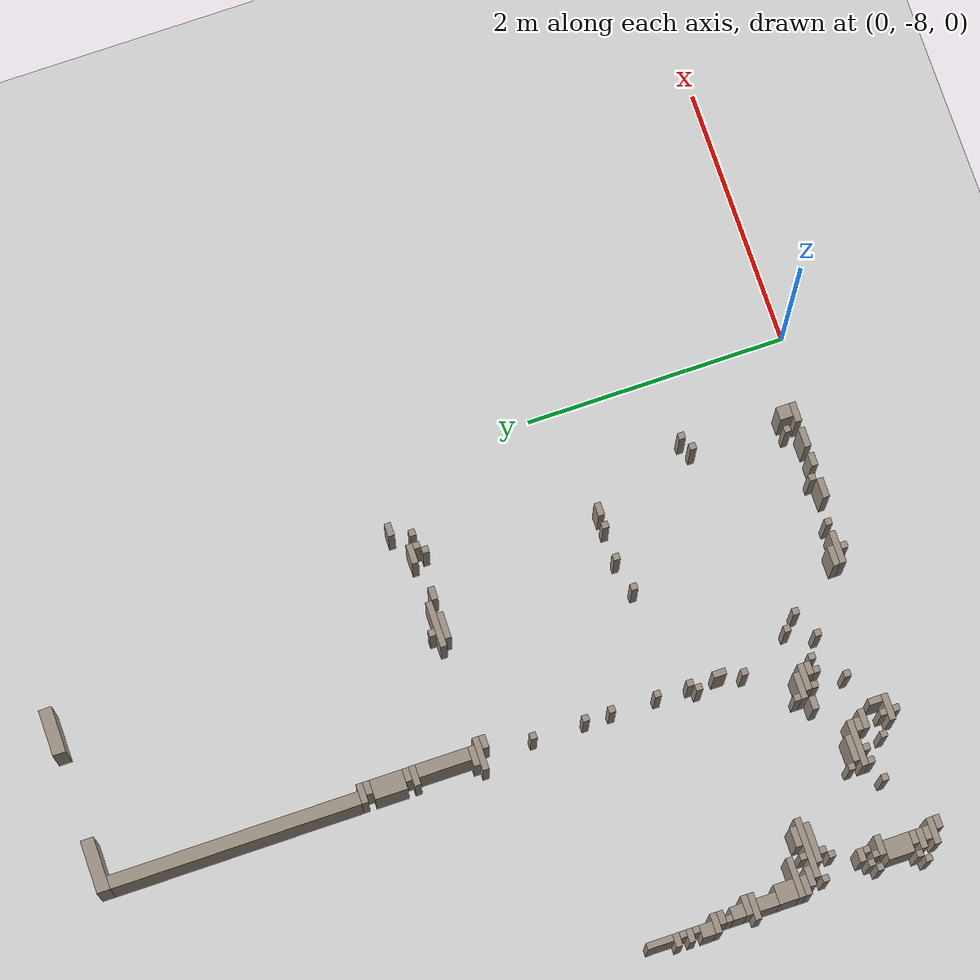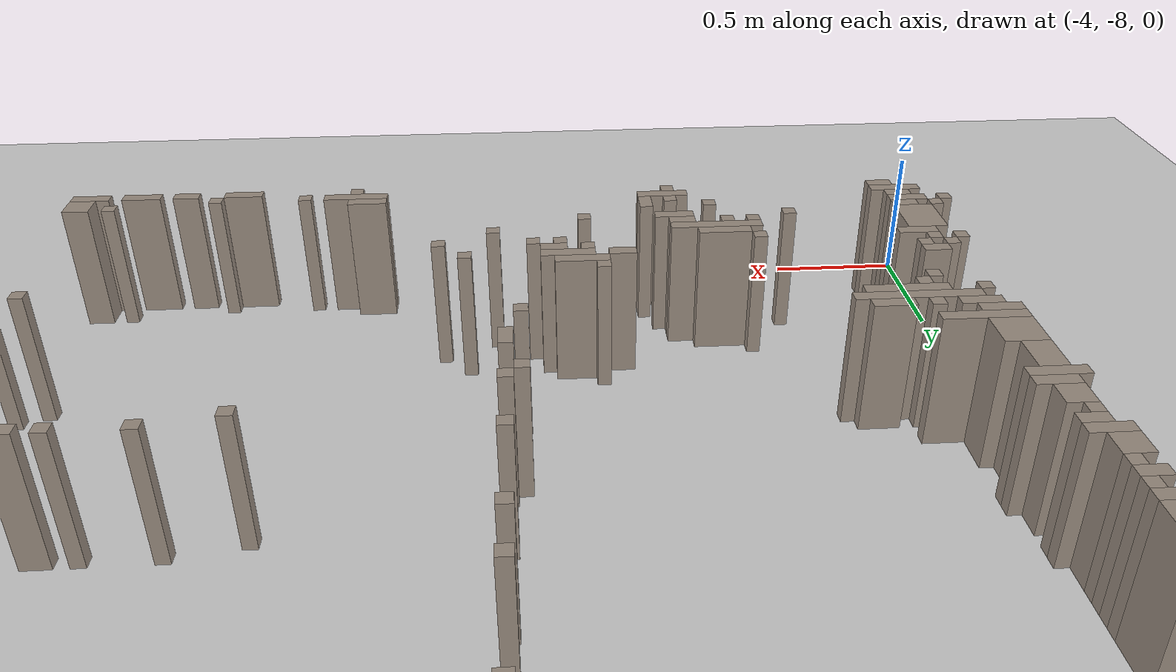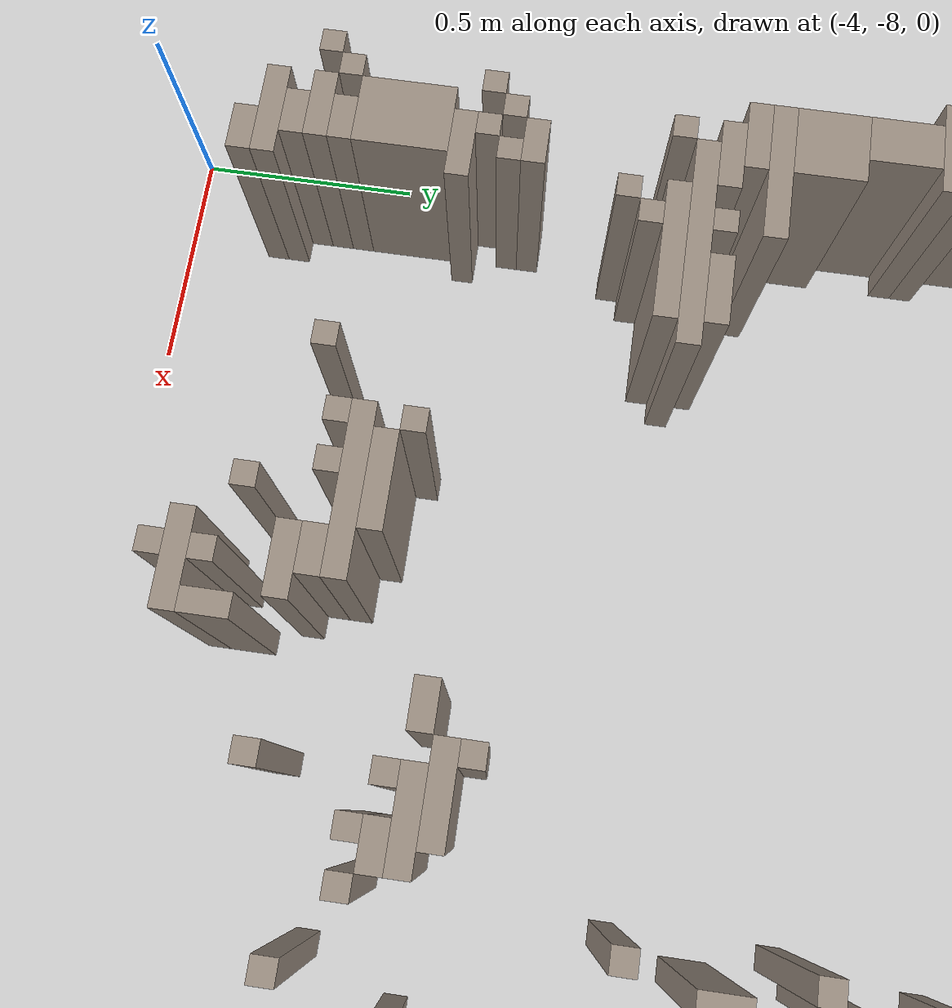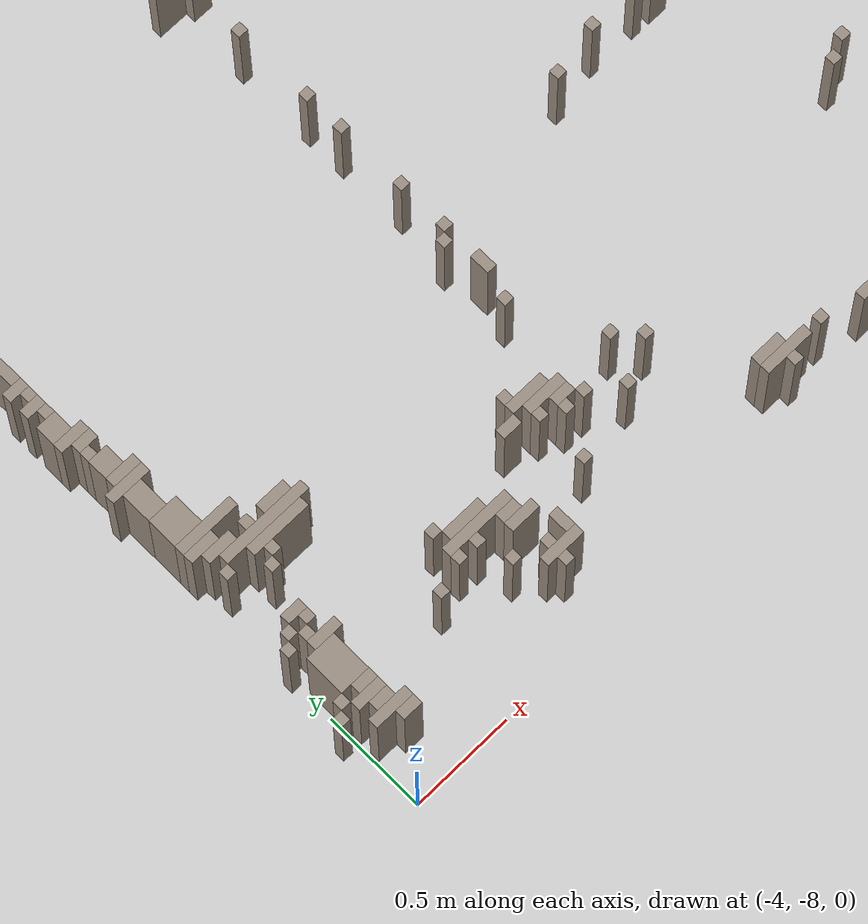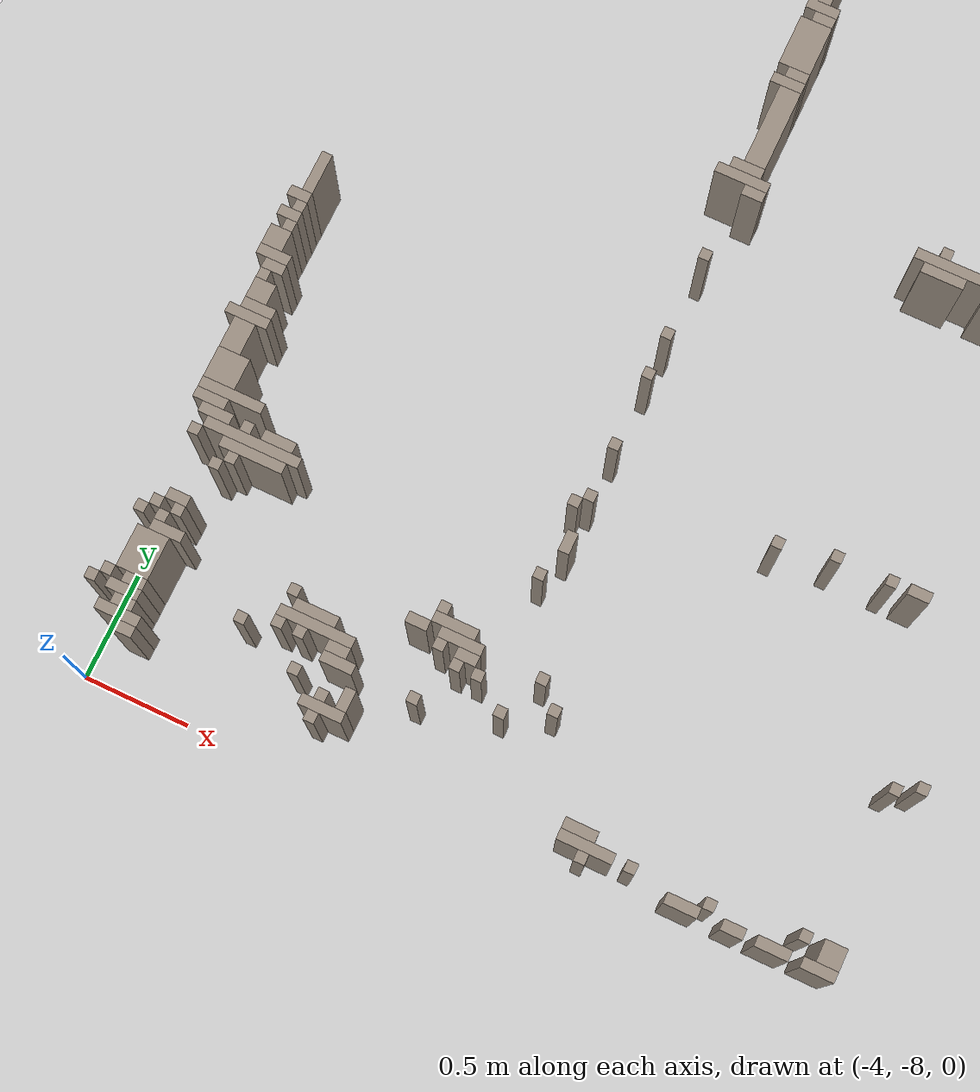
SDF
<sdf version="1.8">
 <world name="sala_real">
  <model name="ground_plane">
   <static>true</static>
   <link name="link">
    <collision name="col">
     <geometry><plane><normal>0 0 1</normal><size>100 100</size></plane></geometry>
    </collision>
    <visual name="vis">
     <geometry><plane><normal>0 0 1</normal><size>100 100</size></plane></geometry>
     <material><ambient>0.8 0.8 0.8 1</ambient><diffuse>0.8 0.8 0.8 1</diffuse></material>
    </visual>
   </link>
  </model>
  <model name="wall_330">
   <static>true</static>
   <pose>-2.310 -3.938 0.250 0 0 0</pose>
   <link name="link">
    <collision name="col"><geometry><box><size>0.150 0.050 0.500</size></box></geometry></collision>
    <visual name="vis">
     <geometry><box><size>0.150 0.050 0.500</size></box></geometry>
     <material><ambient>0.6 0.55 0.5 1</ambient><diffuse>0.6 0.55 0.5 1</diffuse></material>
    </visual>
   </link>
  </model>
  <model name="wall_349">
   <static>true</static>
   <pose>-2.285 -3.988 0.250 0 0 0</pose>
   <link name="link">
    <collision name="col"><geometry><box><size>0.100 0.050 0.500</size></box></geometry></collision>
    <visual name="vis">
     <geometry><box><size>0.100 0.050 0.500</size></box></geometry>
     <material><ambient>0.6 0.55 0.5 1</ambient><diffuse>0.6 0.55 0.5 1</diffuse></material>
    </visual>
   </link>
  </model>
  <model name="wall_352">
   <static>true</static>
   <pose>-2.310 -4.138 0.250 0 0 0</pose>
   <link name="link">
    <collision name="col"><geometry><box><size>0.150 0.250 0.500</size></box></geometry></collision>
    <visual name="vis">
     <geometry><box><size>0.150 0.250 0.500</size></box></geometry>
     <material><ambient>0.6 0.55 0.5 1</ambient><diffuse>0.6 0.55 0.5 1</diffuse></material>
    </visual>
   </link>
  </model>
  <model name="wall_355">
   <static>true</static>
   <pose>-2.285 -4.288 0.250 0 0 0</pose>
   <link name="link">
    <collision name="col"><geometry><box><size>0.100 0.050 0.500</size></box></geometry></collision>
    <visual name="vis">
     <geometry><box><size>0.100 0.050 0.500</size></box></geometry>
     <material><ambient>0.6 0.55 0.5 1</ambient><diffuse>0.6 0.55 0.5 1</diffuse></material>
    </visual>
   </link>
  </model>
  <model name="wall_384">
   <static>true</static>
   <pose>-2.310 -4.338 0.250 0 0 0</pose>
   <link name="link">
    <collision name="col"><geometry><box><size>0.150 0.050 0.500</size></box></geometry></collision>
    <visual name="vis">
     <geometry><box><size>0.150 0.050 0.500</size></box></geometry>
     <material><ambient>0.6 0.55 0.5 1</ambient><diffuse>0.6 0.55 0.5 1</diffuse></material>
    </visual>
   </link>
  </model>
  <model name="wall_394">
   <static>true</static>
   <pose>-2.310 -5.238 0.250 0 0 0</pose>
   <link name="link">
    <collision name="col"><geometry><box><size>0.050 0.050 0.500</size></box></geometry></collision>
    <visual name="vis">
     <geometry><box><size>0.050 0.050 0.500</size></box></geometry>
     <material><ambient>0.6 0.55 0.5 1</ambient><diffuse>0.6 0.55 0.5 1</diffuse></material>
    </visual>
   </link>
  </model>
  <model name="wall_395">
   <static>true</static>
   <pose>-4.010 -5.613 0.250 0 0 0</pose>
   <link name="link">
    <collision name="col"><geometry><box><size>0.050 0.200 0.500</size></box></geometry></collision>
    <visual name="vis">
     <geometry><box><size>0.050 0.200 0.500</size></box></geometry>
     <material><ambient>0.6 0.55 0.5 1</ambient><diffuse>0.6 0.55 0.5 1</diffuse></material>
    </visual>
   </link>
  </model>
  <model name="wall_396">
   <static>true</static>
   <pose>-4.035 -5.738 0.250 0 0 0</pose>
   <link name="link">
    <collision name="col"><geometry><box><size>0.100 0.050 0.500</size></box></geometry></collision>
    <visual name="vis">
     <geometry><box><size>0.100 0.050 0.500</size></box></geometry>
     <material><ambient>0.6 0.55 0.5 1</ambient><diffuse>0.6 0.55 0.5 1</diffuse></material>
    </visual>
   </link>
  </model>
  <model name="wall_397">
   <static>true</static>
   <pose>-2.310 -5.638 0.250 0 0 0</pose>
   <link name="link">
    <collision name="col"><geometry><box><size>0.050 0.050 0.500</size></box></geometry></collision>
    <visual name="vis">
     <geometry><box><size>0.050 0.050 0.500</size></box></geometry>
     <material><ambient>0.6 0.55 0.5 1</ambient><diffuse>0.6 0.55 0.5 1</diffuse></material>
    </visual>
   </link>
  </model>
  <model name="wall_398">
   <static>true</static>
   <pose>-4.010 -5.788 0.250 0 0 0</pose>
   <link name="link">
    <collision name="col"><geometry><box><size>0.050 0.050 0.500</size></box></geometry></collision>
    <visual name="vis">
     <geometry><box><size>0.050 0.050 0.500</size></box></geometry>
     <material><ambient>0.6 0.55 0.5 1</ambient><diffuse>0.6 0.55 0.5 1</diffuse></material>
    </visual>
   </link>
  </model>
  <model name="wall_399">
   <static>true</static>
   <pose>-4.035 -5.838 0.250 0 0 0</pose>
   <link name="link">
    <collision name="col"><geometry><box><size>0.100 0.050 0.500</size></box></geometry></collision>
    <visual name="vis">
     <geometry><box><size>0.100 0.050 0.500</size></box></geometry>
     <material><ambient>0.6 0.55 0.5 1</ambient><diffuse>0.6 0.55 0.5 1</diffuse></material>
    </visual>
   </link>
  </model>
  <model name="wall_406">
   <static>true</static>
   <pose>-4.010 -5.888 0.250 0 0 0</pose>
   <link name="link">
    <collision name="col"><geometry><box><size>0.050 0.050 0.500</size></box></geometry></collision>
    <visual name="vis">
     <geometry><box><size>0.050 0.050 0.500</size></box></geometry>
     <material><ambient>0.6 0.55 0.5 1</ambient><diffuse>0.6 0.55 0.5 1</diffuse></material>
    </visual>
   </link>
  </model>
  <model name="wall_407">
   <static>true</static>
   <pose>-3.985 -6.088 0.250 0 0 0</pose>
   <link name="link">
    <collision name="col"><geometry><box><size>0.100 0.050 0.500</size></box></geometry></collision>
    <visual name="vis">
     <geometry><box><size>0.100 0.050 0.500</size></box></geometry>
     <material><ambient>0.6 0.55 0.5 1</ambient><diffuse>0.6 0.55 0.5 1</diffuse></material>
    </visual>
   </link>
  </model>
  <model name="wall_408">
   <static>true</static>
   <pose>-2.310 -5.838 0.250 0 0 0</pose>
   <link name="link">
    <collision name="col"><geometry><box><size>0.050 0.050 0.500</size></box></geometry></collision>
    <visual name="vis">
     <geometry><box><size>0.050 0.050 0.500</size></box></geometry>
     <material><ambient>0.6 0.55 0.5 1</ambient><diffuse>0.6 0.55 0.5 1</diffuse></material>
    </visual>
   </link>
  </model>
  <model name="wall_418">
   <static>true</static>
   <pose>-3.985 -6.213 0.250 0 0 0</pose>
   <link name="link">
    <collision name="col"><geometry><box><size>0.100 0.100 0.500</size></box></geometry></collision>
    <visual name="vis">
     <geometry><box><size>0.100 0.100 0.500</size></box></geometry>
     <material><ambient>0.6 0.55 0.5 1</ambient><diffuse>0.6 0.55 0.5 1</diffuse></material>
    </visual>
   </link>
  </model>
  <model name="wall_420">
   <static>true</static>
   <pose>-2.310 -6.188 0.250 0 0 0</pose>
   <link name="link">
    <collision name="col"><geometry><box><size>0.050 0.050 0.500</size></box></geometry></collision>
    <visual name="vis">
     <geometry><box><size>0.050 0.050 0.500</size></box></geometry>
     <material><ambient>0.6 0.55 0.5 1</ambient><diffuse>0.6 0.55 0.5 1</diffuse></material>
    </visual>
   </link>
  </model>
  <model name="wall_425">
   <static>true</static>
   <pose>-3.960 -6.288 0.250 0 0 0</pose>
   <link name="link">
    <collision name="col"><geometry><box><size>0.150 0.050 0.500</size></box></geometry></collision>
    <visual name="vis">
     <geometry><box><size>0.150 0.050 0.500</size></box></geometry>
     <material><ambient>0.6 0.55 0.5 1</ambient><diffuse>0.6 0.55 0.5 1</diffuse></material>
    </visual>
   </link>
  </model>
  <model name="wall_428">
   <static>true</static>
   <pose>-2.310 -6.438 0.250 0 0 0</pose>
   <link name="link">
    <collision name="col"><geometry><box><size>0.050 0.050 0.500</size></box></geometry></collision>
    <visual name="vis">
     <geometry><box><size>0.050 0.050 0.500</size></box></geometry>
     <material><ambient>0.6 0.55 0.5 1</ambient><diffuse>0.6 0.55 0.5 1</diffuse></material>
    </visual>
   </link>
  </model>
  <model name="wall_432">
   <static>true</static>
   <pose>-3.960 -6.588 0.250 0 0 0</pose>
   <link name="link">
    <collision name="col"><geometry><box><size>0.150 0.150 0.500</size></box></geometry></collision>
    <visual name="vis">
     <geometry><box><size>0.150 0.150 0.500</size></box></geometry>
     <material><ambient>0.6 0.55 0.5 1</ambient><diffuse>0.6 0.55 0.5 1</diffuse></material>
    </visual>
   </link>
  </model>
  <model name="wall_435">
   <static>true</static>
   <pose>-2.360 -6.488 0.250 0 0 0</pose>
   <link name="link">
    <collision name="col"><geometry><box><size>0.050 0.050 0.500</size></box></geometry></collision>
    <visual name="vis">
     <geometry><box><size>0.050 0.050 0.500</size></box></geometry>
     <material><ambient>0.6 0.55 0.5 1</ambient><diffuse>0.6 0.55 0.5 1</diffuse></material>
    </visual>
   </link>
  </model>
  <model name="wall_440">
   <static>true</static>
   <pose>-3.760 -6.788 0.250 0 0 0</pose>
   <link name="link">
    <collision name="col"><geometry><box><size>0.050 0.050 0.500</size></box></geometry></collision>
    <visual name="vis">
     <geometry><box><size>0.050 0.050 0.500</size></box></geometry>
     <material><ambient>0.6 0.55 0.5 1</ambient><diffuse>0.6 0.55 0.5 1</diffuse></material>
    </visual>
   </link>
  </model>
  <model name="wall_453">
   <static>true</static>
   <pose>-3.960 -6.888 0.250 0 0 0</pose>
   <link name="link">
    <collision name="col"><geometry><box><size>0.050 0.050 0.500</size></box></geometry></collision>
    <visual name="vis">
     <geometry><box><size>0.050 0.050 0.500</size></box></geometry>
     <material><ambient>0.6 0.55 0.5 1</ambient><diffuse>0.6 0.55 0.5 1</diffuse></material>
    </visual>
   </link>
  </model>
  <model name="wall_457">
   <static>true</static>
   <pose>-4.010 -6.138 0.250 0 0 0</pose>
   <link name="link">
    <collision name="col"><geometry><box><size>0.050 0.050 0.500</size></box></geometry></collision>
    <visual name="vis">
     <geometry><box><size>0.050 0.050 0.500</size></box></geometry>
     <material><ambient>0.6 0.55 0.5 1</ambient><diffuse>0.6 0.55 0.5 1</diffuse></material>
    </visual>
   </link>
  </model>
  <model name="wall_462">
   <static>true</static>
   <pose>-3.910 -6.788 0.250 0 0 0</pose>
   <link name="link">
    <collision name="col"><geometry><box><size>0.150 0.050 0.500</size></box></geometry></collision>
    <visual name="vis">
     <geometry><box><size>0.150 0.050 0.500</size></box></geometry>
     <material><ambient>0.6 0.55 0.5 1</ambient><diffuse>0.6 0.55 0.5 1</diffuse></material>
    </visual>
   </link>
  </model>
  <model name="wall_466">
   <static>true</static>
   <pose>-3.260 -7.338 0.250 0 0 0</pose>
   <link name="link">
    <collision name="col"><geometry><box><size>0.050 0.050 0.500</size></box></geometry></collision>
    <visual name="vis">
     <geometry><box><size>0.050 0.050 0.500</size></box></geometry>
     <material><ambient>0.6 0.55 0.5 1</ambient><diffuse>0.6 0.55 0.5 1</diffuse></material>
    </visual>
   </link>
  </model>
  <model name="wall_470">
   <static>true</static>
   <pose>-2.610 -7.288 0.250 0 0 0</pose>
   <link name="link">
    <collision name="col"><geometry><box><size>0.050 0.050 0.500</size></box></geometry></collision>
    <visual name="vis">
     <geometry><box><size>0.050 0.050 0.500</size></box></geometry>
     <material><ambient>0.6 0.55 0.5 1</ambient><diffuse>0.6 0.55 0.5 1</diffuse></material>
    </visual>
   </link>
  </model>
  <model name="wall_471">
   <static>true</static>
   <pose>-4.010 -7.288 0.250 0 0 0</pose>
   <link name="link">
    <collision name="col"><geometry><box><size>0.050 0.050 0.500</size></box></geometry></collision>
    <visual name="vis">
     <geometry><box><size>0.050 0.050 0.500</size></box></geometry>
     <material><ambient>0.6 0.55 0.5 1</ambient><diffuse>0.6 0.55 0.5 1</diffuse></material>
    </visual>
   </link>
  </model>
  <model name="wall_472">
   <static>true</static>
   <pose>-3.885 -7.188 0.250 0 0 0</pose>
   <link name="link">
    <collision name="col"><geometry><box><size>0.100 0.050 0.500</size></box></geometry></collision>
    <visual name="vis">
     <geometry><box><size>0.100 0.050 0.500</size></box></geometry>
     <material><ambient>0.6 0.55 0.5 1</ambient><diffuse>0.6 0.55 0.5 1</diffuse></material>
    </visual>
   </link>
  </model>
  <model name="wall_474">
   <static>true</static>
   <pose>-3.910 -7.463 0.250 0 0 0</pose>
   <link name="link">
    <collision name="col"><geometry><box><size>0.150 0.200 0.500</size></box></geometry></collision>
    <visual name="vis">
     <geometry><box><size>0.150 0.200 0.500</size></box></geometry>
     <material><ambient>0.6 0.55 0.5 1</ambient><diffuse>0.6 0.55 0.5 1</diffuse></material>
    </visual>
   </link>
  </model>
  <model name="wall_478">
   <static>true</static>
   <pose>-3.885 -7.588 0.250 0 0 0</pose>
   <link name="link">
    <collision name="col"><geometry><box><size>0.100 0.050 0.500</size></box></geometry></collision>
    <visual name="vis">
     <geometry><box><size>0.100 0.050 0.500</size></box></geometry>
     <material><ambient>0.6 0.55 0.5 1</ambient><diffuse>0.6 0.55 0.5 1</diffuse></material>
    </visual>
   </link>
  </model>
  <model name="wall_480">
   <static>true</static>
   <pose>-0.760 -4.938 0.250 0 0 0</pose>
   <link name="link">
    <collision name="col"><geometry><box><size>0.050 0.050 0.500</size></box></geometry></collision>
    <visual name="vis">
     <geometry><box><size>0.050 0.050 0.500</size></box></geometry>
     <material><ambient>0.6 0.55 0.5 1</ambient><diffuse>0.6 0.55 0.5 1</diffuse></material>
    </visual>
   </link>
  </model>
  <model name="wall_484">
   <static>true</static>
   <pose>-2.960 -7.688 0.250 0 0 0</pose>
   <link name="link">
    <collision name="col"><geometry><box><size>0.050 0.050 0.500</size></box></geometry></collision>
    <visual name="vis">
     <geometry><box><size>0.050 0.050 0.500</size></box></geometry>
     <material><ambient>0.6 0.55 0.5 1</ambient><diffuse>0.6 0.55 0.5 1</diffuse></material>
    </visual>
   </link>
  </model>
  <model name="wall_485">
   <static>true</static>
   <pose>-1.510 -6.288 0.250 0 0 0</pose>
   <link name="link">
    <collision name="col"><geometry><box><size>0.050 0.050 0.500</size></box></geometry></collision>
    <visual name="vis">
     <geometry><box><size>0.050 0.050 0.500</size></box></geometry>
     <material><ambient>0.6 0.55 0.5 1</ambient><diffuse>0.6 0.55 0.5 1</diffuse></material>
    </visual>
   </link>
  </model>
  <model name="wall_486">
   <static>true</static>
   <pose>-3.910 -7.638 0.250 0 0 0</pose>
   <link name="link">
    <collision name="col"><geometry><box><size>0.150 0.050 0.500</size></box></geometry></collision>
    <visual name="vis">
     <geometry><box><size>0.150 0.050 0.500</size></box></geometry>
     <material><ambient>0.6 0.55 0.5 1</ambient><diffuse>0.6 0.55 0.5 1</diffuse></material>
    </visual>
   </link>
  </model>
  <model name="wall_487">
   <static>true</static>
   <pose>-2.360 -6.838 0.250 0 0 0</pose>
   <link name="link">
    <collision name="col"><geometry><box><size>0.050 0.050 0.500</size></box></geometry></collision>
    <visual name="vis">
     <geometry><box><size>0.050 0.050 0.500</size></box></geometry>
     <material><ambient>0.6 0.55 0.5 1</ambient><diffuse>0.6 0.55 0.5 1</diffuse></material>
    </visual>
   </link>
  </model>
  <model name="wall_488">
   <static>true</static>
   <pose>-2.260 -7.438 0.250 0 0 0</pose>
   <link name="link">
    <collision name="col"><geometry><box><size>0.050 0.050 0.500</size></box></geometry></collision>
    <visual name="vis">
     <geometry><box><size>0.050 0.050 0.500</size></box></geometry>
     <material><ambient>0.6 0.55 0.5 1</ambient><diffuse>0.6 0.55 0.5 1</diffuse></material>
    </visual>
   </link>
  </model>
  <model name="wall_492">
   <static>true</static>
   <pose>-3.885 -7.688 0.250 0 0 0</pose>
   <link name="link">
    <collision name="col"><geometry><box><size>0.100 0.050 0.500</size></box></geometry></collision>
    <visual name="vis">
     <geometry><box><size>0.100 0.050 0.500</size></box></geometry>
     <material><ambient>0.6 0.55 0.5 1</ambient><diffuse>0.6 0.55 0.5 1</diffuse></material>
    </visual>
   </link>
  </model>
  <model name="wall_493">
   <static>true</static>
   <pose>-2.860 -7.663 0.250 0 0 0</pose>
   <link name="link">
    <collision name="col"><geometry><box><size>0.050 0.100 0.500</size></box></geometry></collision>
    <visual name="vis">
     <geometry><box><size>0.050 0.100 0.500</size></box></geometry>
     <material><ambient>0.6 0.55 0.5 1</ambient><diffuse>0.6 0.55 0.5 1</diffuse></material>
    </visual>
   </link>
  </model>
  <model name="wall_494">
   <static>true</static>
   <pose>-2.160 -7.238 0.250 0 0 0</pose>
   <link name="link">
    <collision name="col"><geometry><box><size>0.050 0.050 0.500</size></box></geometry></collision>
    <visual name="vis">
     <geometry><box><size>0.050 0.050 0.500</size></box></geometry>
     <material><ambient>0.6 0.55 0.5 1</ambient><diffuse>0.6 0.55 0.5 1</diffuse></material>
    </visual>
   </link>
  </model>
  <model name="wall_499">
   <static>true</static>
   <pose>-0.710 -4.888 0.250 0 0 0</pose>
   <link name="link">
    <collision name="col"><geometry><box><size>0.050 0.050 0.500</size></box></geometry></collision>
    <visual name="vis">
     <geometry><box><size>0.050 0.050 0.500</size></box></geometry>
     <material><ambient>0.6 0.55 0.5 1</ambient><diffuse>0.6 0.55 0.5 1</diffuse></material>
    </visual>
   </link>
  </model>
  <model name="wall_501">
   <static>true</static>
   <pose>-3.860 -7.338 0.250 0 0 0</pose>
   <link name="link">
    <collision name="col"><geometry><box><size>0.150 0.050 0.500</size></box></geometry></collision>
    <visual name="vis">
     <geometry><box><size>0.150 0.050 0.500</size></box></geometry>
     <material><ambient>0.6 0.55 0.5 1</ambient><diffuse>0.6 0.55 0.5 1</diffuse></material>
    </visual>
   </link>
  </model>
  <model name="wall_502">
   <static>true</static>
   <pose>-0.610 -4.888 0.250 0 0 0</pose>
   <link name="link">
    <collision name="col"><geometry><box><size>0.050 0.050 0.500</size></box></geometry></collision>
    <visual name="vis">
     <geometry><box><size>0.050 0.050 0.500</size></box></geometry>
     <material><ambient>0.6 0.55 0.5 1</ambient><diffuse>0.6 0.55 0.5 1</diffuse></material>
    </visual>
   </link>
  </model>
  <model name="wall_505">
   <static>true</static>
   <pose>-4.060 -7.638 0.250 0 0 0</pose>
   <link name="link">
    <collision name="col"><geometry><box><size>0.050 0.050 0.500</size></box></geometry></collision>
    <visual name="vis">
     <geometry><box><size>0.050 0.050 0.500</size></box></geometry>
     <material><ambient>0.6 0.55 0.5 1</ambient><diffuse>0.6 0.55 0.5 1</diffuse></material>
    </visual>
   </link>
  </model>
  <model name="wall_506">
   <static>true</static>
   <pose>-3.860 -7.238 0.250 0 0 0</pose>
   <link name="link">
    <collision name="col"><geometry><box><size>0.050 0.050 0.500</size></box></geometry></collision>
    <visual name="vis">
     <geometry><box><size>0.050 0.050 0.500</size></box></geometry>
     <material><ambient>0.6 0.55 0.5 1</ambient><diffuse>0.6 0.55 0.5 1</diffuse></material>
    </visual>
   </link>
  </model>
  <model name="wall_507">
   <static>true</static>
   <pose>-3.960 -7.238 0.250 0 0 0</pose>
   <link name="link">
    <collision name="col"><geometry><box><size>0.050 0.050 0.500</size></box></geometry></collision>
    <visual name="vis">
     <geometry><box><size>0.050 0.050 0.500</size></box></geometry>
     <material><ambient>0.6 0.55 0.5 1</ambient><diffuse>0.6 0.55 0.5 1</diffuse></material>
    </visual>
   </link>
  </model>
  <model name="wall_515">
   <static>true</static>
   <pose>-3.835 -7.788 0.250 0 0 0</pose>
   <link name="link">
    <collision name="col"><geometry><box><size>0.100 0.050 0.500</size></box></geometry></collision>
    <visual name="vis">
     <geometry><box><size>0.100 0.050 0.500</size></box></geometry>
     <material><ambient>0.6 0.55 0.5 1</ambient><diffuse>0.6 0.55 0.5 1</diffuse></material>
    </visual>
   </link>
  </model>
  <model name="wall_520">
   <static>true</static>
   <pose>-3.810 -6.988 0.250 0 0 0</pose>
   <link name="link">
    <collision name="col"><geometry><box><size>0.050 0.050 0.500</size></box></geometry></collision>
    <visual name="vis">
     <geometry><box><size>0.050 0.050 0.500</size></box></geometry>
     <material><ambient>0.6 0.55 0.5 1</ambient><diffuse>0.6 0.55 0.5 1</diffuse></material>
    </visual>
   </link>
  </model>
  <model name="wall_526">
   <static>true</static>
   <pose>-2.660 -7.138 0.250 0 0 0</pose>
   <link name="link">
    <collision name="col"><geometry><box><size>0.050 0.050 0.500</size></box></geometry></collision>
    <visual name="vis">
     <geometry><box><size>0.050 0.050 0.500</size></box></geometry>
     <material><ambient>0.6 0.55 0.5 1</ambient><diffuse>0.6 0.55 0.5 1</diffuse></material>
    </visual>
   </link>
  </model>
  <model name="wall_529">
   <static>true</static>
   <pose>-1.760 -7.738 0.250 0 0 0</pose>
   <link name="link">
    <collision name="col"><geometry><box><size>0.150 0.050 0.500</size></box></geometry></collision>
    <visual name="vis">
     <geometry><box><size>0.150 0.050 0.500</size></box></geometry>
     <material><ambient>0.6 0.55 0.5 1</ambient><diffuse>0.6 0.55 0.5 1</diffuse></material>
    </visual>
   </link>
  </model>
  <model name="wall_535">
   <static>true</static>
   <pose>-2.060 -7.338 0.250 0 0 0</pose>
   <link name="link">
    <collision name="col"><geometry><box><size>0.050 0.050 0.500</size></box></geometry></collision>
    <visual name="vis">
     <geometry><box><size>0.050 0.050 0.500</size></box></geometry>
     <material><ambient>0.6 0.55 0.5 1</ambient><diffuse>0.6 0.55 0.5 1</diffuse></material>
    </visual>
   </link>
  </model>
  <model name="wall_540">
   <static>true</static>
   <pose>-1.160 -7.788 0.250 0 0 0</pose>
   <link name="link">
    <collision name="col"><geometry><box><size>0.050 0.050 0.500</size></box></geometry></collision>
    <visual name="vis">
     <geometry><box><size>0.050 0.050 0.500</size></box></geometry>
     <material><ambient>0.6 0.55 0.5 1</ambient><diffuse>0.6 0.55 0.5 1</diffuse></material>
    </visual>
   </link>
  </model>
  <model name="wall_542">
   <static>true</static>
   <pose>-0.660 -7.038 0.250 0 0 0</pose>
   <link name="link">
    <collision name="col"><geometry><box><size>0.050 0.050 0.500</size></box></geometry></collision>
    <visual name="vis">
     <geometry><box><size>0.050 0.050 0.500</size></box></geometry>
     <material><ambient>0.6 0.55 0.5 1</ambient><diffuse>0.6 0.55 0.5 1</diffuse></material>
    </visual>
   </link>
  </model>
  <model name="wall_547">
   <static>true</static>
   <pose>-2.960 -7.788 0.250 0 0 0</pose>
   <link name="link">
    <collision name="col"><geometry><box><size>0.050 0.050 0.500</size></box></geometry></collision>
    <visual name="vis">
     <geometry><box><size>0.050 0.050 0.500</size></box></geometry>
     <material><ambient>0.6 0.55 0.5 1</ambient><diffuse>0.6 0.55 0.5 1</diffuse></material>
    </visual>
   </link>
  </model>
  <model name="wall_550">
   <static>true</static>
   <pose>-3.410 -7.538 0.250 0 0 0</pose>
   <link name="link">
    <collision name="col"><geometry><box><size>0.050 0.050 0.500</size></box></geometry></collision>
    <visual name="vis">
     <geometry><box><size>0.050 0.050 0.500</size></box></geometry>
     <material><ambient>0.6 0.55 0.5 1</ambient><diffuse>0.6 0.55 0.5 1</diffuse></material>
    </visual>
   </link>
  </model>
  <model name="wall_551">
   <static>true</static>
   <pose>-2.735 -7.238 0.250 0 0 0</pose>
   <link name="link">
    <collision name="col"><geometry><box><size>0.100 0.050 0.500</size></box></geometry></collision>
    <visual name="vis">
     <geometry><box><size>0.100 0.050 0.500</size></box></geometry>
     <material><ambient>0.6 0.55 0.5 1</ambient><diffuse>0.6 0.55 0.5 1</diffuse></material>
    </visual>
   </link>
  </model>
  <model name="wall_592">
   <static>true</static>
   <pose>-2.410 -7.338 0.250 0 0 0</pose>
   <link name="link">
    <collision name="col"><geometry><box><size>0.050 0.050 0.500</size></box></geometry></collision>
    <visual name="vis">
     <geometry><box><size>0.050 0.050 0.500</size></box></geometry>
     <material><ambient>0.6 0.55 0.5 1</ambient><diffuse>0.6 0.55 0.5 1</diffuse></material>
    </visual>
   </link>
  </model>
  <model name="wall_593">
   <static>true</static>
   <pose>-2.335 -2.963 0.250 0 0 0</pose>
   <link name="link">
    <collision name="col"><geometry><box><size>0.100 1.900 0.500</size></box></geometry></collision>
    <visual name="vis">
     <geometry><box><size>0.100 1.900 0.500</size></box></geometry>
     <material><ambient>0.6 0.55 0.5 1</ambient><diffuse>0.6 0.55 0.5 1</diffuse></material>
    </visual>
   </link>
  </model>
  <model name="wall_597">
   <static>true</static>
   <pose>-3.760 -6.938 0.250 0 0 0</pose>
   <link name="link">
    <collision name="col"><geometry><box><size>0.050 0.050 0.500</size></box></geometry></collision>
    <visual name="vis">
     <geometry><box><size>0.050 0.050 0.500</size></box></geometry>
     <material><ambient>0.6 0.55 0.5 1</ambient><diffuse>0.6 0.55 0.5 1</diffuse></material>
    </visual>
   </link>
  </model>
  <model name="wall_691">
   <static>true</static>
   <pose>-0.560 -6.988 0.250 0 0 0</pose>
   <link name="link">
    <collision name="col"><geometry><box><size>0.050 0.050 0.500</size></box></geometry></collision>
    <visual name="vis">
     <geometry><box><size>0.050 0.050 0.500</size></box></geometry>
     <material><ambient>0.6 0.55 0.5 1</ambient><diffuse>0.6 0.55 0.5 1</diffuse></material>
    </visual>
   </link>
  </model>
  <model name="wall_710">
   <static>true</static>
   <pose>-1.710 -7.838 0.250 0 0 0</pose>
   <link name="link">
    <collision name="col"><geometry><box><size>0.050 0.050 0.500</size></box></geometry></collision>
    <visual name="vis">
     <geometry><box><size>0.050 0.050 0.500</size></box></geometry>
     <material><ambient>0.6 0.55 0.5 1</ambient><diffuse>0.6 0.55 0.5 1</diffuse></material>
    </visual>
   </link>
  </model>
  <model name="wall_911">
   <static>true</static>
   <pose>-2.310 -4.788 0.250 0 0 0</pose>
   <link name="link">
    <collision name="col"><geometry><box><size>0.150 0.050 0.500</size></box></geometry></collision>
    <visual name="vis">
     <geometry><box><size>0.150 0.050 0.500</size></box></geometry>
     <material><ambient>0.6 0.55 0.5 1</ambient><diffuse>0.6 0.55 0.5 1</diffuse></material>
    </visual>
   </link>
  </model>
  <model name="wall_914">
   <static>true</static>
   <pose>-1.035 -7.838 0.250 0 0 0</pose>
   <link name="link">
    <collision name="col"><geometry><box><size>0.100 0.050 0.500</size></box></geometry></collision>
    <visual name="vis">
     <geometry><box><size>0.100 0.050 0.500</size></box></geometry>
     <material><ambient>0.6 0.55 0.5 1</ambient><diffuse>0.6 0.55 0.5 1</diffuse></material>
    </visual>
   </link>
  </model>
  <model name="wall_922">
   <static>true</static>
   <pose>-1.010 -6.238 0.250 0 0 0</pose>
   <link name="link">
    <collision name="col"><geometry><box><size>0.050 0.050 0.500</size></box></geometry></collision>
    <visual name="vis">
     <geometry><box><size>0.050 0.050 0.500</size></box></geometry>
     <material><ambient>0.6 0.55 0.5 1</ambient><diffuse>0.6 0.55 0.5 1</diffuse></material>
    </visual>
   </link>
  </model>
  <model name="wall_928">
   <static>true</static>
   <pose>-0.535 -4.738 0.250 0 0 0</pose>
   <link name="link">
    <collision name="col"><geometry><box><size>0.100 0.050 0.500</size></box></geometry></collision>
    <visual name="vis">
     <geometry><box><size>0.100 0.050 0.500</size></box></geometry>
     <material><ambient>0.6 0.55 0.5 1</ambient><diffuse>0.6 0.55 0.5 1</diffuse></material>
    </visual>
   </link>
  </model>
  <model name="wall_938">
   <static>true</static>
   <pose>-0.635 -7.763 0.250 0 0 0</pose>
   <link name="link">
    <collision name="col"><geometry><box><size>0.100 0.100 0.500</size></box></geometry></collision>
    <visual name="vis">
     <geometry><box><size>0.100 0.100 0.500</size></box></geometry>
     <material><ambient>0.6 0.55 0.5 1</ambient><diffuse>0.6 0.55 0.5 1</diffuse></material>
    </visual>
   </link>
  </model>
  <model name="wall_947">
   <static>true</static>
   <pose>-1.160 -1.963 0.250 0 0 0</pose>
   <link name="link">
    <collision name="col"><geometry><box><size>0.350 0.100 0.500</size></box></geometry></collision>
    <visual name="vis">
     <geometry><box><size>0.350 0.100 0.500</size></box></geometry>
     <material><ambient>0.6 0.55 0.5 1</ambient><diffuse>0.6 0.55 0.5 1</diffuse></material>
    </visual>
   </link>
  </model>
  <model name="wall_950">
   <static>true</static>
   <pose>-2.310 -6.663 0.250 0 0 0</pose>
   <link name="link">
    <collision name="col"><geometry><box><size>0.050 0.100 0.500</size></box></geometry></collision>
    <visual name="vis">
     <geometry><box><size>0.050 0.100 0.500</size></box></geometry>
     <material><ambient>0.6 0.55 0.5 1</ambient><diffuse>0.6 0.55 0.5 1</diffuse></material>
    </visual>
   </link>
  </model>
  <model name="wall_987">
   <static>true</static>
   <pose>-2.185 -1.963 0.250 0 0 0</pose>
   <link name="link">
    <collision name="col"><geometry><box><size>0.400 0.100 0.500</size></box></geometry></collision>
    <visual name="vis">
     <geometry><box><size>0.400 0.100 0.500</size></box></geometry>
     <material><ambient>0.6 0.55 0.5 1</ambient><diffuse>0.6 0.55 0.5 1</diffuse></material>
    </visual>
   </link>
  </model>
  <model name="wall_1027">
   <static>true</static>
   <pose>-2.285 -4.563 0.250 0 0 0</pose>
   <link name="link">
    <collision name="col"><geometry><box><size>0.100 0.400 0.500</size></box></geometry></collision>
    <visual name="vis">
     <geometry><box><size>0.100 0.400 0.500</size></box></geometry>
     <material><ambient>0.6 0.55 0.5 1</ambient><diffuse>0.6 0.55 0.5 1</diffuse></material>
    </visual>
   </link>
  </model>
  <model name="wall_1046">
   <static>true</static>
   <pose>-1.360 -4.788 0.250 0 0 0</pose>
   <link name="link">
    <collision name="col"><geometry><box><size>0.050 0.050 0.500</size></box></geometry></collision>
    <visual name="vis">
     <geometry><box><size>0.050 0.050 0.500</size></box></geometry>
     <material><ambient>0.6 0.55 0.5 1</ambient><diffuse>0.6 0.55 0.5 1</diffuse></material>
    </visual>
   </link>
  </model>
  <model name="wall_1051">
   <static>true</static>
   <pose>-2.310 -4.838 0.250 0 0 0</pose>
   <link name="link">
    <collision name="col"><geometry><box><size>0.250 0.050 0.500</size></box></geometry></collision>
    <visual name="vis">
     <geometry><box><size>0.250 0.050 0.500</size></box></geometry>
     <material><ambient>0.6 0.55 0.5 1</ambient><diffuse>0.6 0.55 0.5 1</diffuse></material>
    </visual>
   </link>
  </model>
  <model name="wall_1052">
   <static>true</static>
   <pose>-1.310 -4.838 0.250 0 0 0</pose>
   <link name="link">
    <collision name="col"><geometry><box><size>0.350 0.050 0.500</size></box></geometry></collision>
    <visual name="vis">
     <geometry><box><size>0.350 0.050 0.500</size></box></geometry>
     <material><ambient>0.6 0.55 0.5 1</ambient><diffuse>0.6 0.55 0.5 1</diffuse></material>
    </visual>
   </link>
  </model>
  <model name="wall_1053">
   <static>true</static>
   <pose>-0.760 -4.838 0.250 0 0 0</pose>
   <link name="link">
    <collision name="col"><geometry><box><size>0.150 0.050 0.500</size></box></geometry></collision>
    <visual name="vis">
     <geometry><box><size>0.150 0.050 0.500</size></box></geometry>
     <material><ambient>0.6 0.55 0.5 1</ambient><diffuse>0.6 0.55 0.5 1</diffuse></material>
    </visual>
   </link>
  </model>
  <model name="wall_1057">
   <static>true</static>
   <pose>-2.235 -4.888 0.250 0 0 0</pose>
   <link name="link">
    <collision name="col"><geometry><box><size>0.100 0.050 0.500</size></box></geometry></collision>
    <visual name="vis">
     <geometry><box><size>0.100 0.050 0.500</size></box></geometry>
     <material><ambient>0.6 0.55 0.5 1</ambient><diffuse>0.6 0.55 0.5 1</diffuse></material>
    </visual>
   </link>
  </model>
  <model name="wall_1058">
   <static>true</static>
   <pose>-1.335 -4.888 0.250 0 0 0</pose>
   <link name="link">
    <collision name="col"><geometry><box><size>0.200 0.050 0.500</size></box></geometry></collision>
    <visual name="vis">
     <geometry><box><size>0.200 0.050 0.500</size></box></geometry>
     <material><ambient>0.6 0.55 0.5 1</ambient><diffuse>0.6 0.55 0.5 1</diffuse></material>
    </visual>
   </link>
  </model>
  <model name="wall_1059">
   <static>true</static>
   <pose>-1.085 -4.888 0.250 0 0 0</pose>
   <link name="link">
    <collision name="col"><geometry><box><size>0.100 0.050 0.500</size></box></geometry></collision>
    <visual name="vis">
     <geometry><box><size>0.100 0.050 0.500</size></box></geometry>
     <material><ambient>0.6 0.55 0.5 1</ambient><diffuse>0.6 0.55 0.5 1</diffuse></material>
    </visual>
   </link>
  </model>
  <model name="wall_1062">
   <static>true</static>
   <pose>-0.760 -7.738 0.250 0 0 0</pose>
   <link name="link">
    <collision name="col"><geometry><box><size>0.050 0.050 0.500</size></box></geometry></collision>
    <visual name="vis">
     <geometry><box><size>0.050 0.050 0.500</size></box></geometry>
     <material><ambient>0.6 0.55 0.5 1</ambient><diffuse>0.6 0.55 0.5 1</diffuse></material>
    </visual>
   </link>
  </model>
  <model name="wall_1063">
   <static>true</static>
   <pose>-4.010 -7.588 0.250 0 0 0</pose>
   <link name="link">
    <collision name="col"><geometry><box><size>0.050 0.050 0.500</size></box></geometry></collision>
    <visual name="vis">
     <geometry><box><size>0.050 0.050 0.500</size></box></geometry>
     <material><ambient>0.6 0.55 0.5 1</ambient><diffuse>0.6 0.55 0.5 1</diffuse></material>
    </visual>
   </link>
  </model>
  <model name="wall_1064">
   <static>true</static>
   <pose>-4.035 -5.963 0.250 0 0 0</pose>
   <link name="link">
    <collision name="col"><geometry><box><size>0.100 0.100 0.500</size></box></geometry></collision>
    <visual name="vis">
     <geometry><box><size>0.100 0.100 0.500</size></box></geometry>
     <material><ambient>0.6 0.55 0.5 1</ambient><diffuse>0.6 0.55 0.5 1</diffuse></material>
    </visual>
   </link>
  </model>
  <model name="wall_1066">
   <static>true</static>
   <pose>-4.010 -6.038 0.250 0 0 0</pose>
   <link name="link">
    <collision name="col"><geometry><box><size>0.150 0.050 0.500</size></box></geometry></collision>
    <visual name="vis">
     <geometry><box><size>0.150 0.050 0.500</size></box></geometry>
     <material><ambient>0.6 0.55 0.5 1</ambient><diffuse>0.6 0.55 0.5 1</diffuse></material>
    </visual>
   </link>
  </model>
  <model name="wall_1069">
   <static>true</static>
   <pose>-3.985 -6.438 0.250 0 0 0</pose>
   <link name="link">
    <collision name="col"><geometry><box><size>0.100 0.150 0.500</size></box></geometry></collision>
    <visual name="vis">
     <geometry><box><size>0.100 0.150 0.500</size></box></geometry>
     <material><ambient>0.6 0.55 0.5 1</ambient><diffuse>0.6 0.55 0.5 1</diffuse></material>
    </visual>
   </link>
  </model>
  <model name="wall_1080">
   <static>true</static>
   <pose>-1.260 -6.238 0.250 0 0 0</pose>
   <link name="link">
    <collision name="col"><geometry><box><size>0.050 0.050 0.500</size></box></geometry></collision>
    <visual name="vis">
     <geometry><box><size>0.050 0.050 0.500</size></box></geometry>
     <material><ambient>0.6 0.55 0.5 1</ambient><diffuse>0.6 0.55 0.5 1</diffuse></material>
    </visual>
   </link>
  </model>
  <model name="wall_1081">
   <static>true</static>
   <pose>-0.885 -6.238 0.250 0 0 0</pose>
   <link name="link">
    <collision name="col"><geometry><box><size>0.100 0.050 0.500</size></box></geometry></collision>
    <visual name="vis">
     <geometry><box><size>0.100 0.050 0.500</size></box></geometry>
     <material><ambient>0.6 0.55 0.5 1</ambient><diffuse>0.6 0.55 0.5 1</diffuse></material>
    </visual>
   </link>
  </model>
  <model name="wall_1084">
   <static>true</static>
   <pose>-3.960 -6.738 0.250 0 0 0</pose>
   <link name="link">
    <collision name="col"><geometry><box><size>0.150 0.050 0.500</size></box></geometry></collision>
    <visual name="vis">
     <geometry><box><size>0.150 0.050 0.500</size></box></geometry>
     <material><ambient>0.6 0.55 0.5 1</ambient><diffuse>0.6 0.55 0.5 1</diffuse></material>
    </visual>
   </link>
  </model>
  <model name="wall_1085">
   <static>true</static>
   <pose>-1.510 -7.788 0.250 0 0 0</pose>
   <link name="link">
    <collision name="col"><geometry><box><size>0.050 0.050 0.500</size></box></geometry></collision>
    <visual name="vis">
     <geometry><box><size>0.050 0.050 0.500</size></box></geometry>
     <material><ambient>0.6 0.55 0.5 1</ambient><diffuse>0.6 0.55 0.5 1</diffuse></material>
    </visual>
   </link>
  </model>
  <model name="wall_1086">
   <static>true</static>
   <pose>-3.985 -6.338 0.250 0 0 0</pose>
   <link name="link">
    <collision name="col"><geometry><box><size>0.200 0.050 0.500</size></box></geometry></collision>
    <visual name="vis">
     <geometry><box><size>0.200 0.050 0.500</size></box></geometry>
     <material><ambient>0.6 0.55 0.5 1</ambient><diffuse>0.6 0.55 0.5 1</diffuse></material>
    </visual>
   </link>
  </model>
  <model name="wall_1089">
   <static>true</static>
   <pose>-3.885 -6.688 0.250 0 0 0</pose>
   <link name="link">
    <collision name="col"><geometry><box><size>0.300 0.050 0.500</size></box></geometry></collision>
    <visual name="vis">
     <geometry><box><size>0.300 0.050 0.500</size></box></geometry>
     <material><ambient>0.6 0.55 0.5 1</ambient><diffuse>0.6 0.55 0.5 1</diffuse></material>
    </visual>
   </link>
  </model>
  <model name="wall_1092">
   <static>true</static>
   <pose>-3.610 -6.788 0.250 0 0 0</pose>
   <link name="link">
    <collision name="col"><geometry><box><size>0.150 0.050 0.500</size></box></geometry></collision>
    <visual name="vis">
     <geometry><box><size>0.150 0.050 0.500</size></box></geometry>
     <material><ambient>0.6 0.55 0.5 1</ambient><diffuse>0.6 0.55 0.5 1</diffuse></material>
    </visual>
   </link>
  </model>
  <model name="wall_1093">
   <static>true</static>
   <pose>-3.710 -6.838 0.250 0 0 0</pose>
   <link name="link">
    <collision name="col"><geometry><box><size>0.450 0.050 0.500</size></box></geometry></collision>
    <visual name="vis">
     <geometry><box><size>0.450 0.050 0.500</size></box></geometry>
     <material><ambient>0.6 0.55 0.5 1</ambient><diffuse>0.6 0.55 0.5 1</diffuse></material>
    </visual>
   </link>
  </model>
  <model name="wall_1095">
   <static>true</static>
   <pose>-3.685 -6.888 0.250 0 0 0</pose>
   <link name="link">
    <collision name="col"><geometry><box><size>0.300 0.050 0.500</size></box></geometry></collision>
    <visual name="vis">
     <geometry><box><size>0.300 0.050 0.500</size></box></geometry>
     <material><ambient>0.6 0.55 0.5 1</ambient><diffuse>0.6 0.55 0.5 1</diffuse></material>
    </visual>
   </link>
  </model>
  <model name="wall_1100">
   <static>true</static>
   <pose>-2.585 -7.188 0.250 0 0 0</pose>
   <link name="link">
    <collision name="col"><geometry><box><size>0.200 0.050 0.500</size></box></geometry></collision>
    <visual name="vis">
     <geometry><box><size>0.200 0.050 0.500</size></box></geometry>
     <material><ambient>0.6 0.55 0.5 1</ambient><diffuse>0.6 0.55 0.5 1</diffuse></material>
    </visual>
   </link>
  </model>
  <model name="wall_1104">
   <static>true</static>
   <pose>-2.535 -7.238 0.250 0 0 0</pose>
   <link name="link">
    <collision name="col"><geometry><box><size>0.200 0.050 0.500</size></box></geometry></collision>
    <visual name="vis">
     <geometry><box><size>0.200 0.050 0.500</size></box></geometry>
     <material><ambient>0.6 0.55 0.5 1</ambient><diffuse>0.6 0.55 0.5 1</diffuse></material>
    </visual>
   </link>
  </model>
  <model name="wall_1107">
   <static>true</static>
   <pose>-3.910 -7.288 0.250 0 0 0</pose>
   <link name="link">
    <collision name="col"><geometry><box><size>0.050 0.050 0.500</size></box></geometry></collision>
    <visual name="vis">
     <geometry><box><size>0.050 0.050 0.500</size></box></geometry>
     <material><ambient>0.6 0.55 0.5 1</ambient><diffuse>0.6 0.55 0.5 1</diffuse></material>
    </visual>
   </link>
  </model>
  <model name="wall_1108">
   <static>true</static>
   <pose>-2.610 -7.538 0.250 0 0 0</pose>
   <link name="link">
    <collision name="col"><geometry><box><size>0.050 0.050 0.500</size></box></geometry></collision>
    <visual name="vis">
     <geometry><box><size>0.050 0.050 0.500</size></box></geometry>
     <material><ambient>0.6 0.55 0.5 1</ambient><diffuse>0.6 0.55 0.5 1</diffuse></material>
    </visual>
   </link>
  </model>
  <model name="wall_1109">
   <static>true</static>
   <pose>-2.485 -7.288 0.250 0 0 0</pose>
   <link name="link">
    <collision name="col"><geometry><box><size>0.100 0.050 0.500</size></box></geometry></collision>
    <visual name="vis">
     <geometry><box><size>0.100 0.050 0.500</size></box></geometry>
     <material><ambient>0.6 0.55 0.5 1</ambient><diffuse>0.6 0.55 0.5 1</diffuse></material>
    </visual>
   </link>
  </model>
  <model name="wall_1113">
   <static>true</static>
   <pose>-3.260 -7.488 0.250 0 0 0</pose>
   <link name="link">
    <collision name="col"><geometry><box><size>0.050 0.050 0.500</size></box></geometry></collision>
    <visual name="vis">
     <geometry><box><size>0.050 0.050 0.500</size></box></geometry>
     <material><ambient>0.6 0.55 0.5 1</ambient><diffuse>0.6 0.55 0.5 1</diffuse></material>
    </visual>
   </link>
  </model>
  <model name="wall_1114">
   <static>true</static>
   <pose>-2.510 -7.338 0.250 0 0 0</pose>
   <link name="link">
    <collision name="col"><geometry><box><size>0.050 0.050 0.500</size></box></geometry></collision>
    <visual name="vis">
     <geometry><box><size>0.050 0.050 0.500</size></box></geometry>
     <material><ambient>0.6 0.55 0.5 1</ambient><diffuse>0.6 0.55 0.5 1</diffuse></material>
    </visual>
   </link>
  </model>
  <model name="wall_1117">
   <static>true</static>
   <pose>-3.135 -7.388 0.250 0 0 0</pose>
   <link name="link">
    <collision name="col"><geometry><box><size>0.200 0.050 0.500</size></box></geometry></collision>
    <visual name="vis">
     <geometry><box><size>0.200 0.050 0.500</size></box></geometry>
     <material><ambient>0.6 0.55 0.5 1</ambient><diffuse>0.6 0.55 0.5 1</diffuse></material>
    </visual>
   </link>
  </model>
  <model name="wall_1118">
   <static>true</static>
   <pose>-3.110 -7.438 0.250 0 0 0</pose>
   <link name="link">
    <collision name="col"><geometry><box><size>0.350 0.050 0.500</size></box></geometry></collision>
    <visual name="vis">
     <geometry><box><size>0.350 0.050 0.500</size></box></geometry>
     <material><ambient>0.6 0.55 0.5 1</ambient><diffuse>0.6 0.55 0.5 1</diffuse></material>
    </visual>
   </link>
  </model>
  <model name="wall_1122">
   <static>true</static>
   <pose>-3.160 -7.488 0.250 0 0 0</pose>
   <link name="link">
    <collision name="col"><geometry><box><size>0.050 0.050 0.500</size></box></geometry></collision>
    <visual name="vis">
     <geometry><box><size>0.050 0.050 0.500</size></box></geometry>
     <material><ambient>0.6 0.55 0.5 1</ambient><diffuse>0.6 0.55 0.5 1</diffuse></material>
    </visual>
   </link>
  </model>
  <model name="wall_1123">
   <static>true</static>
   <pose>-2.985 -7.488 0.250 0 0 0</pose>
   <link name="link">
    <collision name="col"><geometry><box><size>0.100 0.050 0.500</size></box></geometry></collision>
    <visual name="vis">
     <geometry><box><size>0.100 0.050 0.500</size></box></geometry>
     <material><ambient>0.6 0.55 0.5 1</ambient><diffuse>0.6 0.55 0.5 1</diffuse></material>
    </visual>
   </link>
  </model>
  <model name="wall_1125">
   <static>true</static>
   <pose>-2.960 -7.538 0.250 0 0 0</pose>
   <link name="link">
    <collision name="col"><geometry><box><size>0.150 0.050 0.500</size></box></geometry></collision>
    <visual name="vis">
     <geometry><box><size>0.150 0.050 0.500</size></box></geometry>
     <material><ambient>0.6 0.55 0.5 1</ambient><diffuse>0.6 0.55 0.5 1</diffuse></material>
    </visual>
   </link>
  </model>
  <model name="wall_1129">
   <static>true</static>
   <pose>-3.110 -7.638 0.250 0 0 0</pose>
   <link name="link">
    <collision name="col"><geometry><box><size>0.050 0.050 0.500</size></box></geometry></collision>
    <visual name="vis">
     <geometry><box><size>0.050 0.050 0.500</size></box></geometry>
     <material><ambient>0.6 0.55 0.5 1</ambient><diffuse>0.6 0.55 0.5 1</diffuse></material>
    </visual>
   </link>
  </model>
  <model name="wall_1132">
   <static>true</static>
   <pose>-3.885 -7.738 0.250 0 0 0</pose>
   <link name="link">
    <collision name="col"><geometry><box><size>0.200 0.050 0.500</size></box></geometry></collision>
    <visual name="vis">
     <geometry><box><size>0.200 0.050 0.500</size></box></geometry>
     <material><ambient>0.6 0.55 0.5 1</ambient><diffuse>0.6 0.55 0.5 1</diffuse></material>
    </visual>
   </link>
  </model>
  <model name="wall_1133">
   <static>true</static>
   <pose>-2.935 -7.738 0.250 0 0 0</pose>
   <link name="link">
    <collision name="col"><geometry><box><size>0.200 0.050 0.500</size></box></geometry></collision>
    <visual name="vis">
     <geometry><box><size>0.200 0.050 0.500</size></box></geometry>
     <material><ambient>0.6 0.55 0.5 1</ambient><diffuse>0.6 0.55 0.5 1</diffuse></material>
    </visual>
   </link>
  </model>
  <model name="wall_1136">
   <static>true</static>
   <pose>-1.710 -7.788 0.250 0 0 0</pose>
   <link name="link">
    <collision name="col"><geometry><box><size>0.250 0.050 0.500</size></box></geometry></collision>
    <visual name="vis">
     <geometry><box><size>0.250 0.050 0.500</size></box></geometry>
     <material><ambient>0.6 0.55 0.5 1</ambient><diffuse>0.6 0.55 0.5 1</diffuse></material>
    </visual>
   </link>
  </model>
  <model name="wall_1139">
   <static>true</static>
   <pose>-1.260 -7.838 0.250 0 0 0</pose>
   <link name="link">
    <collision name="col"><geometry><box><size>0.150 0.050 0.500</size></box></geometry></collision>
    <visual name="vis">
     <geometry><box><size>0.150 0.050 0.500</size></box></geometry>
     <material><ambient>0.6 0.55 0.5 1</ambient><diffuse>0.6 0.55 0.5 1</diffuse></material>
    </visual>
   </link>
  </model>
  <model name="wall_1140">
   <static>true</static>
   <pose>-0.860 -7.838 0.250 0 0 0</pose>
   <link name="link">
    <collision name="col"><geometry><box><size>0.150 0.050 0.500</size></box></geometry></collision>
    <visual name="vis">
     <geometry><box><size>0.150 0.050 0.500</size></box></geometry>
     <material><ambient>0.6 0.55 0.5 1</ambient><diffuse>0.6 0.55 0.5 1</diffuse></material>
    </visual>
   </link>
  </model>
  <model name="wall_1141">
   <static>true</static>
   <pose>-0.660 -7.838 0.250 0 0 0</pose>
   <link name="link">
    <collision name="col"><geometry><box><size>0.150 0.050 0.500</size></box></geometry></collision>
    <visual name="vis">
     <geometry><box><size>0.150 0.050 0.500</size></box></geometry>
     <material><ambient>0.6 0.55 0.5 1</ambient><diffuse>0.6 0.55 0.5 1</diffuse></material>
    </visual>
   </link>
  </model>
 </world>
</sdf>
